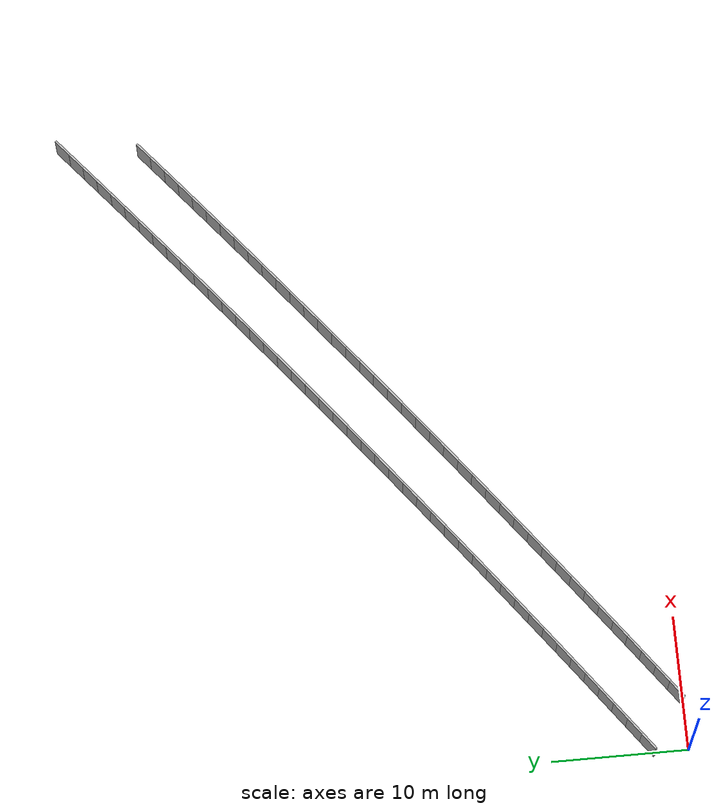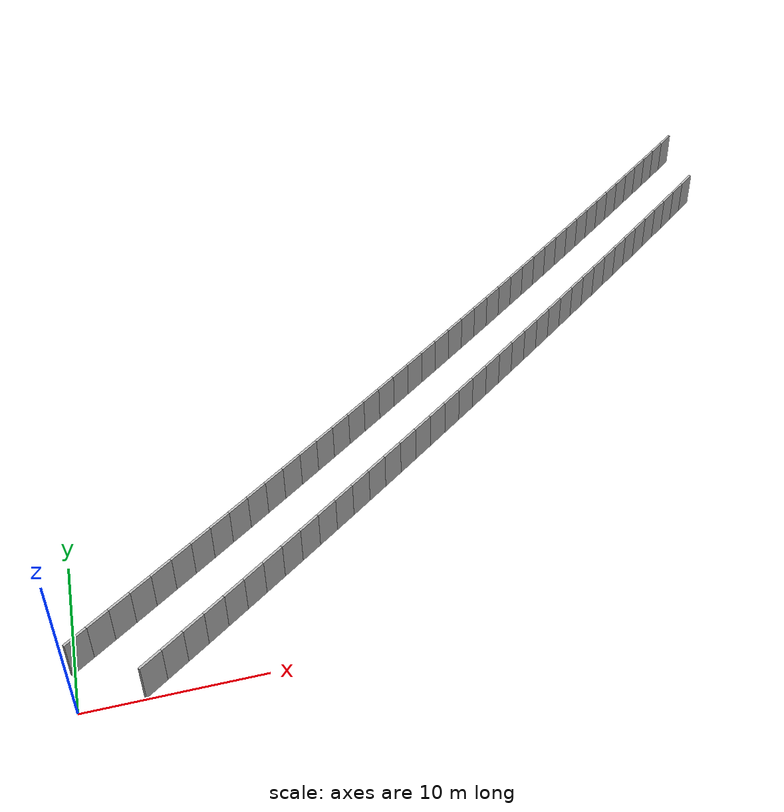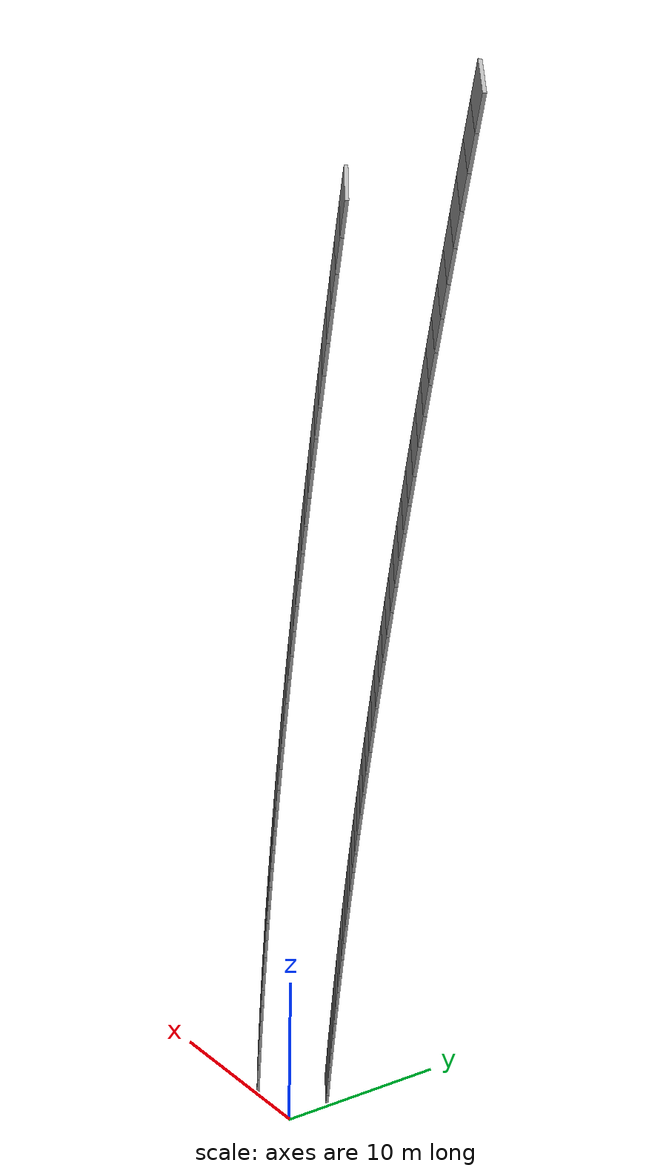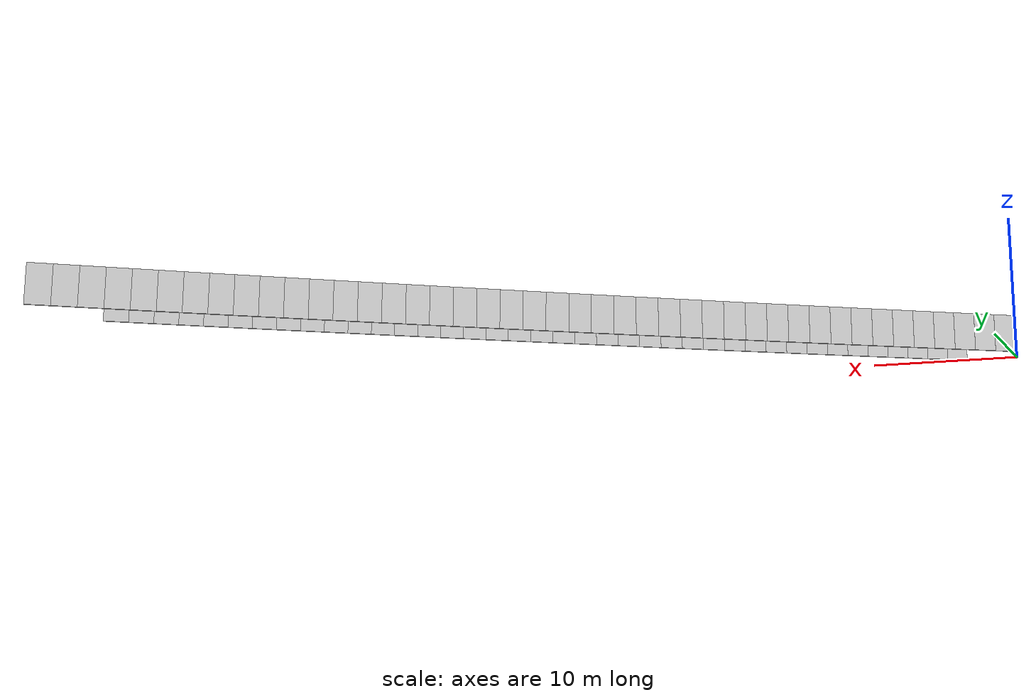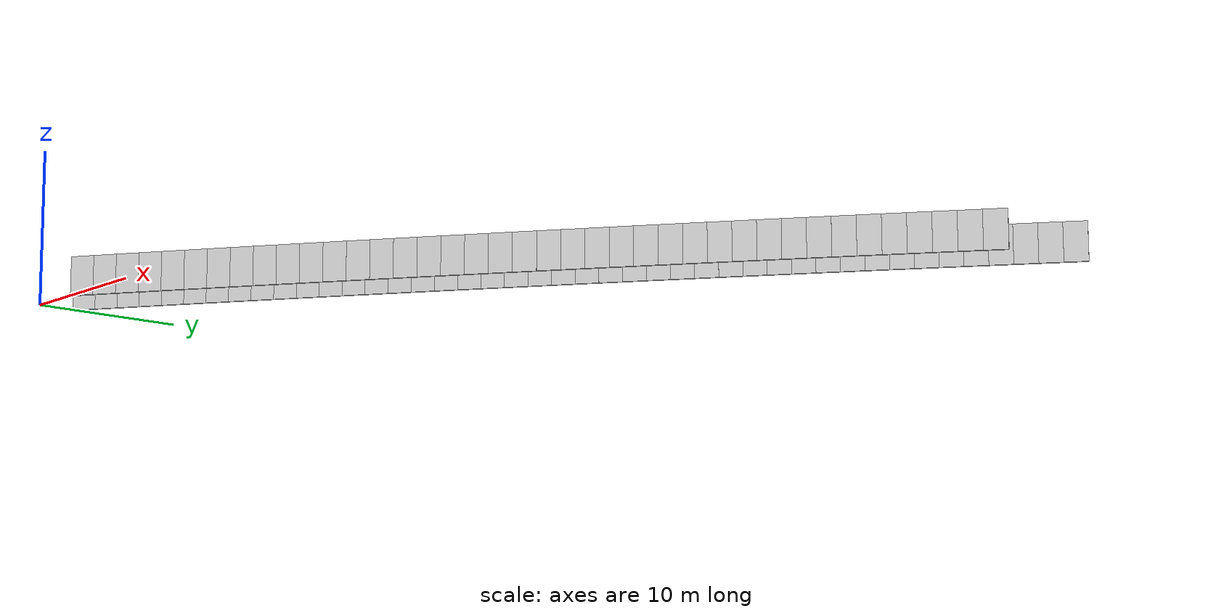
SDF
<?xml version="1.0" ?>
<sdf version="1.6">
  <model name="sps_3707">
    <pose frame="">0 0 0 0 -0 0</pose>
    <static>1</static>
    <self_collide>0</self_collide>
    <allow_auto_disable>0</allow_auto_disable>
    <link name="Wall4065">
      <kinematic>0</kinematic>
      <gravity>1</gravity>
      <self_collide>0</self_collide>
      <collision name="collision">
        <geometry>
          <box>
            <size>1.49635 0.15 2.5</size>
          </box>
        </geometry>
        <pose frame="">0 0 0 0 -0 0</pose>
      </collision>
      <visual name="visual">
        <geometry>
          <box>
            <size>1.49635 0.15 2.5</size>
          </box>
        </geometry>
        <pose frame="">0 0 0 0 -0 0</pose>
        <cast_shadows>1</cast_shadows>
        <transparency>0.0</transparency>
      </visual>
      <pose frame="">0.377952 2.98592 1.25 0 -0 0.634674</pose>
    </link>
    <link name="Wall4066">
      <kinematic>0</kinematic>
      <gravity>1</gravity>
      <self_collide>0</self_collide>
      <collision name="collision">
        <geometry>
          <box>
            <size>1.49643 0.15 2.5</size>
          </box>
        </geometry>
        <pose frame="">0 0 0 0 -0 0</pose>
      </collision>
      <visual name="visual">
        <geometry>
          <box>
            <size>1.49643 0.15 2.5</size>
          </box>
        </geometry>
        <pose frame="">0 0 0 0 -0 0</pose>
        <cast_shadows>1</cast_shadows>
        <transparency>0.0</transparency>
      </visual>
      <pose frame="">1.58224 3.8741 1.25 0 -0 0.636257</pose>
    </link>
    <link name="Wall4067">
      <kinematic>0</kinematic>
      <gravity>1</gravity>
      <self_collide>0</self_collide>
      <collision name="collision">
        <geometry>
          <box>
            <size>1.49668 0.15 2.5</size>
          </box>
        </geometry>
        <pose frame="">0 0 0 0 -0 0</pose>
      </collision>
      <visual name="visual">
        <geometry>
          <box>
            <size>1.49668 0.15 2.5</size>
          </box>
        </geometry>
        <pose frame="">0 0 0 0 -0 0</pose>
        <cast_shadows>1</cast_shadows>
        <transparency>0.0</transparency>
      </visual>
      <pose frame="">2.78524 4.7643 1.25 0 -0 0.637857</pose>
    </link>
    <link name="Wall4068">
      <kinematic>0</kinematic>
      <gravity>1</gravity>
      <self_collide>0</self_collide>
      <collision name="collision">
        <geometry>
          <box>
            <size>1.49646 0.15 2.5</size>
          </box>
        </geometry>
        <pose frame="">0 0 0 0 -0 0</pose>
      </collision>
      <visual name="visual">
        <geometry>
          <box>
            <size>1.49646 0.15 2.5</size>
          </box>
        </geometry>
        <pose frame="">0 0 0 0 -0 0</pose>
        <cast_shadows>1</cast_shadows>
        <transparency>0.0</transparency>
      </visual>
      <pose frame="">3.98684 5.65642 1.25 0 -0 0.639439</pose>
    </link>
    <link name="Wall4069">
      <kinematic>0</kinematic>
      <gravity>1</gravity>
      <self_collide>0</self_collide>
      <collision name="collision">
        <geometry>
          <box>
            <size>1.49665 0.15 2.5</size>
          </box>
        </geometry>
        <pose frame="">0 0 0 0 -0 0</pose>
      </collision>
      <visual name="visual">
        <geometry>
          <box>
            <size>1.49665 0.15 2.5</size>
          </box>
        </geometry>
        <pose frame="">0 0 0 0 -0 0</pose>
        <cast_shadows>1</cast_shadows>
        <transparency>0.0</transparency>
      </visual>
      <pose frame="">5.18703 6.5504 1.25 0 -0 0.640973</pose>
    </link>
    <link name="Wall4070">
      <kinematic>0</kinematic>
      <gravity>1</gravity>
      <self_collide>0</self_collide>
      <collision name="collision">
        <geometry>
          <box>
            <size>1.49667 0.15 2.5</size>
          </box>
        </geometry>
        <pose frame="">0 0 0 0 -0 0</pose>
      </collision>
      <visual name="visual">
        <geometry>
          <box>
            <size>1.49667 0.15 2.5</size>
          </box>
        </geometry>
        <pose frame="">0 0 0 0 -0 0</pose>
        <cast_shadows>1</cast_shadows>
        <transparency>0.0</transparency>
      </visual>
      <pose frame="">6.38595 7.44627 1.25 0 -0 0.64249</pose>
    </link>
    <link name="Wall4071">
      <kinematic>0</kinematic>
      <gravity>1</gravity>
      <self_collide>0</self_collide>
      <collision name="collision">
        <geometry>
          <box>
            <size>1.49656 0.15 2.5</size>
          </box>
        </geometry>
        <pose frame="">0 0 0 0 -0 0</pose>
      </collision>
      <visual name="visual">
        <geometry>
          <box>
            <size>1.49656 0.15 2.5</size>
          </box>
        </geometry>
        <pose frame="">0 0 0 0 -0 0</pose>
        <cast_shadows>1</cast_shadows>
        <transparency>0.0</transparency>
      </visual>
      <pose frame="">7.58337 8.34407 1.25 0 -0 0.644227</pose>
    </link>
    <link name="Wall4072">
      <kinematic>0</kinematic>
      <gravity>1</gravity>
      <self_collide>0</self_collide>
      <collision name="collision">
        <geometry>
          <box>
            <size>1.4965 0.15 2.5</size>
          </box>
        </geometry>
        <pose frame="">0 0 0 0 -0 0</pose>
      </collision>
      <visual name="visual">
        <geometry>
          <box>
            <size>1.4965 0.15 2.5</size>
          </box>
        </geometry>
        <pose frame="">0 0 0 0 -0 0</pose>
        <cast_shadows>1</cast_shadows>
        <transparency>0.0</transparency>
      </visual>
      <pose frame="">8.77917 9.24388 1.25 0 -0 0.64594</pose>
    </link>
    <link name="Wall4073">
      <kinematic>0</kinematic>
      <gravity>1</gravity>
      <self_collide>0</self_collide>
      <collision name="collision">
        <geometry>
          <box>
            <size>1.49648 0.15 2.5</size>
          </box>
        </geometry>
        <pose frame="">0 0 0 0 -0 0</pose>
      </collision>
      <visual name="visual">
        <geometry>
          <box>
            <size>1.49648 0.15 2.5</size>
          </box>
        </geometry>
        <pose frame="">0 0 0 0 -0 0</pose>
        <cast_shadows>1</cast_shadows>
        <transparency>0.0</transparency>
      </visual>
      <pose frame="">9.97356 10.1455 1.25 0 -0 0.647278</pose>
    </link>
    <link name="Wall4074">
      <kinematic>0</kinematic>
      <gravity>1</gravity>
      <self_collide>0</self_collide>
      <collision name="collision">
        <geometry>
          <box>
            <size>1.49658 0.15 2.5</size>
          </box>
        </geometry>
        <pose frame="">0 0 0 0 -0 0</pose>
      </collision>
      <visual name="visual">
        <geometry>
          <box>
            <size>1.49658 0.15 2.5</size>
          </box>
        </geometry>
        <pose frame="">0 0 0 0 -0 0</pose>
        <cast_shadows>1</cast_shadows>
        <transparency>0.0</transparency>
      </visual>
      <pose frame="">11.1666 11.0489 1.25 0 -0 0.648917</pose>
    </link>
    <link name="Wall4075">
      <kinematic>0</kinematic>
      <gravity>1</gravity>
      <self_collide>0</self_collide>
      <collision name="collision">
        <geometry>
          <box>
            <size>1.49639 0.15 2.5</size>
          </box>
        </geometry>
        <pose frame="">0 0 0 0 -0 0</pose>
      </collision>
      <visual name="visual">
        <geometry>
          <box>
            <size>1.49639 0.15 2.5</size>
          </box>
        </geometry>
        <pose frame="">0 0 0 0 -0 0</pose>
        <cast_shadows>1</cast_shadows>
        <transparency>0.0</transparency>
      </visual>
      <pose frame="">12.3582 11.9542 1.25 0 -0 0.6505</pose>
    </link>
    <link name="Wall4076">
      <kinematic>0</kinematic>
      <gravity>1</gravity>
      <self_collide>0</self_collide>
      <collision name="collision">
        <geometry>
          <box>
            <size>1.49669 0.15 2.5</size>
          </box>
        </geometry>
        <pose frame="">0 0 0 0 -0 0</pose>
      </collision>
      <visual name="visual">
        <geometry>
          <box>
            <size>1.49669 0.15 2.5</size>
          </box>
        </geometry>
        <pose frame="">0 0 0 0 -0 0</pose>
        <cast_shadows>1</cast_shadows>
        <transparency>0.0</transparency>
      </visual>
      <pose frame="">13.5485 12.8614 1.25 0 -0 0.652041</pose>
    </link>
    <link name="Wall4077">
      <kinematic>0</kinematic>
      <gravity>1</gravity>
      <self_collide>0</self_collide>
      <collision name="collision">
        <geometry>
          <box>
            <size>1.49645 0.15 2.5</size>
          </box>
        </geometry>
        <pose frame="">0 0 0 0 -0 0</pose>
      </collision>
      <visual name="visual">
        <geometry>
          <box>
            <size>1.49645 0.15 2.5</size>
          </box>
        </geometry>
        <pose frame="">0 0 0 0 -0 0</pose>
        <cast_shadows>1</cast_shadows>
        <transparency>0.0</transparency>
      </visual>
      <pose frame="">14.7373 13.7705 1.25 0 -0 0.653649</pose>
    </link>
    <link name="Wall4078">
      <kinematic>0</kinematic>
      <gravity>1</gravity>
      <self_collide>0</self_collide>
      <collision name="collision">
        <geometry>
          <box>
            <size>1.49642 0.15 2.5</size>
          </box>
        </geometry>
        <pose frame="">0 0 0 0 -0 0</pose>
      </collision>
      <visual name="visual">
        <geometry>
          <box>
            <size>1.49642 0.15 2.5</size>
          </box>
        </geometry>
        <pose frame="">0 0 0 0 -0 0</pose>
        <cast_shadows>1</cast_shadows>
        <transparency>0.0</transparency>
      </visual>
      <pose frame="">15.9245 14.6815 1.25 0 -0 0.655362</pose>
    </link>
    <link name="Wall4079">
      <kinematic>0</kinematic>
      <gravity>1</gravity>
      <self_collide>0</self_collide>
      <collision name="collision">
        <geometry>
          <box>
            <size>1.49657 0.15 2.5</size>
          </box>
        </geometry>
        <pose frame="">0 0 0 0 -0 0</pose>
      </collision>
      <visual name="visual">
        <geometry>
          <box>
            <size>1.49657 0.15 2.5</size>
          </box>
        </geometry>
        <pose frame="">0 0 0 0 -0 0</pose>
        <cast_shadows>1</cast_shadows>
        <transparency>0.0</transparency>
      </visual>
      <pose frame="">17.1103 15.5944 1.25 0 -0 0.65683</pose>
    </link>
    <link name="Wall4080">
      <kinematic>0</kinematic>
      <gravity>1</gravity>
      <self_collide>0</self_collide>
      <collision name="collision">
        <geometry>
          <box>
            <size>1.49654 0.15 2.5</size>
          </box>
        </geometry>
        <pose frame="">0 0 0 0 -0 0</pose>
      </collision>
      <visual name="visual">
        <geometry>
          <box>
            <size>1.49654 0.15 2.5</size>
          </box>
        </geometry>
        <pose frame="">0 0 0 0 -0 0</pose>
        <cast_shadows>1</cast_shadows>
        <transparency>0.0</transparency>
      </visual>
      <pose frame="">18.2946 16.5092 1.25 0 -0 0.658543</pose>
    </link>
    <link name="Wall4081">
      <kinematic>0</kinematic>
      <gravity>1</gravity>
      <self_collide>0</self_collide>
      <collision name="collision">
        <geometry>
          <box>
            <size>1.49671 0.15 2.5</size>
          </box>
        </geometry>
        <pose frame="">0 0 0 0 -0 0</pose>
      </collision>
      <visual name="visual">
        <geometry>
          <box>
            <size>1.49671 0.15 2.5</size>
          </box>
        </geometry>
        <pose frame="">0 0 0 0 -0 0</pose>
        <cast_shadows>1</cast_shadows>
        <transparency>0.0</transparency>
      </visual>
      <pose frame="">19.4777 17.4259 1.25 0 -0 0.659952</pose>
    </link>
    <link name="Wall4082">
      <kinematic>0</kinematic>
      <gravity>1</gravity>
      <self_collide>0</self_collide>
      <collision name="collision">
        <geometry>
          <box>
            <size>1.4965 0.15 2.5</size>
          </box>
        </geometry>
        <pose frame="">0 0 0 0 -0 0</pose>
      </collision>
      <visual name="visual">
        <geometry>
          <box>
            <size>1.4965 0.15 2.5</size>
          </box>
        </geometry>
        <pose frame="">0 0 0 0 -0 0</pose>
        <cast_shadows>1</cast_shadows>
        <transparency>0.0</transparency>
      </visual>
      <pose frame="">20.6593 18.3444 1.25 0 -0 0.661562</pose>
    </link>
    <link name="Wall4083">
      <kinematic>0</kinematic>
      <gravity>1</gravity>
      <self_collide>0</self_collide>
      <collision name="collision">
        <geometry>
          <box>
            <size>1.49663 0.15 2.5</size>
          </box>
        </geometry>
        <pose frame="">0 0 0 0 -0 0</pose>
      </collision>
      <visual name="visual">
        <geometry>
          <box>
            <size>1.49663 0.15 2.5</size>
          </box>
        </geometry>
        <pose frame="">0 0 0 0 -0 0</pose>
        <cast_shadows>1</cast_shadows>
        <transparency>0.0</transparency>
      </visual>
      <pose frame="">21.8393 19.2648 1.25 0 -0 0.6632</pose>
    </link>
    <link name="Wall4084">
      <kinematic>0</kinematic>
      <gravity>1</gravity>
      <self_collide>0</self_collide>
      <collision name="collision">
        <geometry>
          <box>
            <size>1.49639 0.15 2.5</size>
          </box>
        </geometry>
        <pose frame="">0 0 0 0 -0 0</pose>
      </collision>
      <visual name="visual">
        <geometry>
          <box>
            <size>1.49639 0.15 2.5</size>
          </box>
        </geometry>
        <pose frame="">0 0 0 0 -0 0</pose>
        <cast_shadows>1</cast_shadows>
        <transparency>0.0</transparency>
      </visual>
      <pose frame="">23.0179 20.187 1.25 0 -0 0.664721</pose>
    </link>
    <link name="Wall4085">
      <kinematic>0</kinematic>
      <gravity>1</gravity>
      <self_collide>0</self_collide>
      <collision name="collision">
        <geometry>
          <box>
            <size>1.49661 0.15 2.5</size>
          </box>
        </geometry>
        <pose frame="">0 0 0 0 -0 0</pose>
      </collision>
      <visual name="visual">
        <geometry>
          <box>
            <size>1.49661 0.15 2.5</size>
          </box>
        </geometry>
        <pose frame="">0 0 0 0 -0 0</pose>
        <cast_shadows>1</cast_shadows>
        <transparency>0.0</transparency>
      </visual>
      <pose frame="">24.195 21.1111 1.25 0 -0 0.666423</pose>
    </link>
    <link name="Wall4086">
      <kinematic>0</kinematic>
      <gravity>1</gravity>
      <self_collide>0</self_collide>
      <collision name="collision">
        <geometry>
          <box>
            <size>1.49638 0.15 2.5</size>
          </box>
        </geometry>
        <pose frame="">0 0 0 0 -0 0</pose>
      </collision>
      <visual name="visual">
        <geometry>
          <box>
            <size>1.49638 0.15 2.5</size>
          </box>
        </geometry>
        <pose frame="">0 0 0 0 -0 0</pose>
        <cast_shadows>1</cast_shadows>
        <transparency>0.0</transparency>
      </visual>
      <pose frame="">25.3706 22.0371 1.25 0 -0 0.667944</pose>
    </link>
    <link name="Wall4087">
      <kinematic>0</kinematic>
      <gravity>1</gravity>
      <self_collide>0</self_collide>
      <collision name="collision">
        <geometry>
          <box>
            <size>1.49649 0.15 2.5</size>
          </box>
        </geometry>
        <pose frame="">0 0 0 0 -0 0</pose>
      </collision>
      <visual name="visual">
        <geometry>
          <box>
            <size>1.49649 0.15 2.5</size>
          </box>
        </geometry>
        <pose frame="">0 0 0 0 -0 0</pose>
        <cast_shadows>1</cast_shadows>
        <transparency>0.0</transparency>
      </visual>
      <pose frame="">26.5447 22.9649 1.25 0 -0 0.66955</pose>
    </link>
    <link name="Wall4088">
      <kinematic>0</kinematic>
      <gravity>1</gravity>
      <self_collide>0</self_collide>
      <collision name="collision">
        <geometry>
          <box>
            <size>1.49653 0.15 2.5</size>
          </box>
        </geometry>
        <pose frame="">0 0 0 0 -0 0</pose>
      </collision>
      <visual name="visual">
        <geometry>
          <box>
            <size>1.49653 0.15 2.5</size>
          </box>
        </geometry>
        <pose frame="">0 0 0 0 -0 0</pose>
        <cast_shadows>1</cast_shadows>
        <transparency>0.0</transparency>
      </visual>
      <pose frame="">27.7174 23.8946 1.25 0 -0 0.671091</pose>
    </link>
    <link name="Wall4089">
      <kinematic>0</kinematic>
      <gravity>1</gravity>
      <self_collide>0</self_collide>
      <collision name="collision">
        <geometry>
          <box>
            <size>1.49673 0.15 2.5</size>
          </box>
        </geometry>
        <pose frame="">0 0 0 0 -0 0</pose>
      </collision>
      <visual name="visual">
        <geometry>
          <box>
            <size>1.49673 0.15 2.5</size>
          </box>
        </geometry>
        <pose frame="">0 0 0 0 -0 0</pose>
        <cast_shadows>1</cast_shadows>
        <transparency>0.0</transparency>
      </visual>
      <pose frame="">28.8888 24.8262 1.25 0 -0 0.672703</pose>
    </link>
    <link name="Wall4090">
      <kinematic>0</kinematic>
      <gravity>1</gravity>
      <self_collide>0</self_collide>
      <collision name="collision">
        <geometry>
          <box>
            <size>1.49639 0.15 2.5</size>
          </box>
        </geometry>
        <pose frame="">0 0 0 0 -0 0</pose>
      </collision>
      <visual name="visual">
        <geometry>
          <box>
            <size>1.49639 0.15 2.5</size>
          </box>
        </geometry>
        <pose frame="">0 0 0 0 -0 0</pose>
        <cast_shadows>1</cast_shadows>
        <transparency>0.0</transparency>
      </visual>
      <pose frame="">30.0586 25.7596 1.25 0 -0 0.674244</pose>
    </link>
    <link name="Wall4091">
      <kinematic>0</kinematic>
      <gravity>1</gravity>
      <self_collide>0</self_collide>
      <collision name="collision">
        <geometry>
          <box>
            <size>1.4966 0.15 2.5</size>
          </box>
        </geometry>
        <pose frame="">0 0 0 0 -0 0</pose>
      </collision>
      <visual name="visual">
        <geometry>
          <box>
            <size>1.4966 0.15 2.5</size>
          </box>
        </geometry>
        <pose frame="">0 0 0 0 -0 0</pose>
        <cast_shadows>1</cast_shadows>
        <transparency>0.0</transparency>
      </visual>
      <pose frame="">31.2268 26.6948 1.25 0 -0 0.675856</pose>
    </link>
    <link name="Wall4092">
      <kinematic>0</kinematic>
      <gravity>1</gravity>
      <self_collide>0</self_collide>
      <collision name="collision">
        <geometry>
          <box>
            <size>1.49661 0.15 2.5</size>
          </box>
        </geometry>
        <pose frame="">0 0 0 0 -0 0</pose>
      </collision>
      <visual name="visual">
        <geometry>
          <box>
            <size>1.49661 0.15 2.5</size>
          </box>
        </geometry>
        <pose frame="">0 0 0 0 -0 0</pose>
        <cast_shadows>1</cast_shadows>
        <transparency>0.0</transparency>
      </visual>
      <pose frame="">32.3937 27.6319 1.25 0 -0 0.677365</pose>
    </link>
    <link name="Wall4093">
      <kinematic>0</kinematic>
      <gravity>1</gravity>
      <self_collide>0</self_collide>
      <collision name="collision">
        <geometry>
          <box>
            <size>1.4965 0.15 2.5</size>
          </box>
        </geometry>
        <pose frame="">0 0 0 0 -0 0</pose>
      </collision>
      <visual name="visual">
        <geometry>
          <box>
            <size>1.4965 0.15 2.5</size>
          </box>
        </geometry>
        <pose frame="">0 0 0 0 -0 0</pose>
        <cast_shadows>1</cast_shadows>
        <transparency>0.0</transparency>
      </visual>
      <pose frame="">33.559 28.5709 1.25 0 -0 0.679155</pose>
    </link>
    <link name="Wall4094">
      <kinematic>0</kinematic>
      <gravity>1</gravity>
      <self_collide>0</self_collide>
      <collision name="collision">
        <geometry>
          <box>
            <size>1.49652 0.15 2.5</size>
          </box>
        </geometry>
        <pose frame="">0 0 0 0 -0 0</pose>
      </collision>
      <visual name="visual">
        <geometry>
          <box>
            <size>1.49652 0.15 2.5</size>
          </box>
        </geometry>
        <pose frame="">0 0 0 0 -0 0</pose>
        <cast_shadows>1</cast_shadows>
        <transparency>0.0</transparency>
      </visual>
      <pose frame="">34.7228 29.5118 1.25 0 -0 0.680665</pose>
    </link>
    <link name="Wall4095">
      <kinematic>0</kinematic>
      <gravity>1</gravity>
      <self_collide>0</self_collide>
      <collision name="collision">
        <geometry>
          <box>
            <size>1.49653 0.15 2.5</size>
          </box>
        </geometry>
        <pose frame="">0 0 0 0 -0 0</pose>
      </collision>
      <visual name="visual">
        <geometry>
          <box>
            <size>1.49653 0.15 2.5</size>
          </box>
        </geometry>
        <pose frame="">0 0 0 0 -0 0</pose>
        <cast_shadows>1</cast_shadows>
        <transparency>0.0</transparency>
      </visual>
      <pose frame="">35.8851 30.4545 1.25 0 -0 0.682231</pose>
    </link>
    <link name="Wall4096">
      <kinematic>0</kinematic>
      <gravity>1</gravity>
      <self_collide>0</self_collide>
      <collision name="collision">
        <geometry>
          <box>
            <size>1.49649 0.15 2.5</size>
          </box>
        </geometry>
        <pose frame="">0 0 0 0 -0 0</pose>
      </collision>
      <visual name="visual">
        <geometry>
          <box>
            <size>1.49649 0.15 2.5</size>
          </box>
        </geometry>
        <pose frame="">0 0 0 0 -0 0</pose>
        <cast_shadows>1</cast_shadows>
        <transparency>0.0</transparency>
      </visual>
      <pose frame="">37.046 31.3989 1.25 0 -0 0.68362</pose>
    </link>
    <link name="Wall4097">
      <kinematic>0</kinematic>
      <gravity>1</gravity>
      <self_collide>0</self_collide>
      <collision name="collision">
        <geometry>
          <box>
            <size>1.49649 0.15 2.5</size>
          </box>
        </geometry>
        <pose frame="">0 0 0 0 -0 0</pose>
      </collision>
      <visual name="visual">
        <geometry>
          <box>
            <size>1.49649 0.15 2.5</size>
          </box>
        </geometry>
        <pose frame="">0 0 0 0 -0 0</pose>
        <cast_shadows>1</cast_shadows>
        <transparency>0.0</transparency>
      </visual>
      <pose frame="">38.2053 32.3451 1.25 0 -0 0.685359</pose>
    </link>
    <link name="Wall4098">
      <kinematic>0</kinematic>
      <gravity>1</gravity>
      <self_collide>0</self_collide>
      <collision name="collision">
        <geometry>
          <box>
            <size>1.49673 0.15 2.5</size>
          </box>
        </geometry>
        <pose frame="">0 0 0 0 -0 0</pose>
      </collision>
      <visual name="visual">
        <geometry>
          <box>
            <size>1.49673 0.15 2.5</size>
          </box>
        </geometry>
        <pose frame="">0 0 0 0 -0 0</pose>
        <cast_shadows>1</cast_shadows>
        <transparency>0.0</transparency>
      </visual>
      <pose frame="">39.3632 33.2933 1.25 0 -0 0.686969</pose>
    </link>
    <link name="Wall4099">
      <kinematic>0</kinematic>
      <gravity>1</gravity>
      <self_collide>0</self_collide>
      <collision name="collision">
        <geometry>
          <box>
            <size>1.49632 0.15 2.5</size>
          </box>
        </geometry>
        <pose frame="">0 0 0 0 -0 0</pose>
      </collision>
      <visual name="visual">
        <geometry>
          <box>
            <size>1.49632 0.15 2.5</size>
          </box>
        </geometry>
        <pose frame="">0 0 0 0 -0 0</pose>
        <cast_shadows>1</cast_shadows>
        <transparency>0.0</transparency>
      </visual>
      <pose frame="">40.5196 34.2433 1.25 0 -0 0.688565</pose>
    </link>
    <link name="Wall4100">
      <kinematic>0</kinematic>
      <gravity>1</gravity>
      <self_collide>0</self_collide>
      <collision name="collision">
        <geometry>
          <box>
            <size>1.49636 0.15 2.5</size>
          </box>
        </geometry>
        <pose frame="">0 0 0 0 -0 0</pose>
      </collision>
      <visual name="visual">
        <geometry>
          <box>
            <size>1.49636 0.15 2.5</size>
          </box>
        </geometry>
        <pose frame="">0 0 0 0 -0 0</pose>
        <cast_shadows>1</cast_shadows>
        <transparency>0.0</transparency>
      </visual>
      <pose frame="">41.6742 35.195 1.25 0 -0 0.690075</pose>
    </link>
    <link name="Wall4101">
      <kinematic>0</kinematic>
      <gravity>1</gravity>
      <self_collide>0</self_collide>
      <collision name="collision">
        <geometry>
          <box>
            <size>1.49656 0.15 2.5</size>
          </box>
        </geometry>
        <pose frame="">0 0 0 0 -0 0</pose>
      </collision>
      <visual name="visual">
        <geometry>
          <box>
            <size>1.49656 0.15 2.5</size>
          </box>
        </geometry>
        <pose frame="">0 0 0 0 -0 0</pose>
        <cast_shadows>1</cast_shadows>
        <transparency>0.0</transparency>
      </visual>
      <pose frame="">42.8275 36.1486 1.25 0 -0 0.69171</pose>
    </link>
    <link name="Wall4102">
      <kinematic>0</kinematic>
      <gravity>1</gravity>
      <self_collide>0</self_collide>
      <collision name="collision">
        <geometry>
          <box>
            <size>1.49682 0.15 2.5</size>
          </box>
        </geometry>
        <pose frame="">0 0 0 0 -0 0</pose>
      </collision>
      <visual name="visual">
        <geometry>
          <box>
            <size>1.49682 0.15 2.5</size>
          </box>
        </geometry>
        <pose frame="">0 0 0 0 -0 0</pose>
        <cast_shadows>1</cast_shadows>
        <transparency>0.0</transparency>
      </visual>
      <pose frame="">43.9795 37.1042 1.25 0 -0 0.693318</pose>
    </link>
    <link name="Wall4103">
      <kinematic>0</kinematic>
      <gravity>1</gravity>
      <self_collide>0</self_collide>
      <collision name="collision">
        <geometry>
          <box>
            <size>1.49656 0.15 2.5</size>
          </box>
        </geometry>
        <pose frame="">0 0 0 0 -0 0</pose>
      </collision>
      <visual name="visual">
        <geometry>
          <box>
            <size>1.49656 0.15 2.5</size>
          </box>
        </geometry>
        <pose frame="">0 0 0 0 -0 0</pose>
        <cast_shadows>1</cast_shadows>
        <transparency>0.0</transparency>
      </visual>
      <pose frame="">45.1299 38.0616 1.25 0 -0 0.694837</pose>
    </link>
    <link name="Wall4104">
      <kinematic>0</kinematic>
      <gravity>1</gravity>
      <self_collide>0</self_collide>
      <collision name="collision">
        <geometry>
          <box>
            <size>1.49652 0.15 2.5</size>
          </box>
        </geometry>
        <pose frame="">0 0 0 0 -0 0</pose>
      </collision>
      <visual name="visual">
        <geometry>
          <box>
            <size>1.49652 0.15 2.5</size>
          </box>
        </geometry>
        <pose frame="">0 0 0 0 -0 0</pose>
        <cast_shadows>1</cast_shadows>
        <transparency>0.0</transparency>
      </visual>
      <pose frame="">46.2787 39.0207 1.25 0 -0 0.696456</pose>
    </link>
    <link name="Wall4105">
      <kinematic>0</kinematic>
      <gravity>1</gravity>
      <self_collide>0</self_collide>
      <collision name="collision">
        <geometry>
          <box>
            <size>1.49639 0.15 2.5</size>
          </box>
        </geometry>
        <pose frame="">0 0 0 0 -0 0</pose>
      </collision>
      <visual name="visual">
        <geometry>
          <box>
            <size>1.49639 0.15 2.5</size>
          </box>
        </geometry>
        <pose frame="">0 0 0 0 -0 0</pose>
        <cast_shadows>1</cast_shadows>
        <transparency>0.0</transparency>
      </visual>
      <pose frame="">47.4259 39.9816 1.25 0 -0 0.69807</pose>
    </link>
    <link name="Wall4106">
      <kinematic>0</kinematic>
      <gravity>1</gravity>
      <self_collide>0</self_collide>
      <collision name="collision">
        <geometry>
          <box>
            <size>1.49666 0.15 2.5</size>
          </box>
        </geometry>
        <pose frame="">0 0 0 0 -0 0</pose>
      </collision>
      <visual name="visual">
        <geometry>
          <box>
            <size>1.49666 0.15 2.5</size>
          </box>
        </geometry>
        <pose frame="">0 0 0 0 -0 0</pose>
        <cast_shadows>1</cast_shadows>
        <transparency>0.0</transparency>
      </visual>
      <pose frame="">48.5716 40.9444 1.25 0 -0 0.699678</pose>
    </link>
    <link name="Wall4107">
      <kinematic>0</kinematic>
      <gravity>1</gravity>
      <self_collide>0</self_collide>
      <collision name="collision">
        <geometry>
          <box>
            <size>1.49642 0.15 2.5</size>
          </box>
        </geometry>
        <pose frame="">0 0 0 0 -0 0</pose>
      </collision>
      <visual name="visual">
        <geometry>
          <box>
            <size>1.49642 0.15 2.5</size>
          </box>
        </geometry>
        <pose frame="">0 0 0 0 -0 0</pose>
        <cast_shadows>1</cast_shadows>
        <transparency>0.0</transparency>
      </visual>
      <pose frame="">49.7158 41.909 1.25 0 -0 0.701198</pose>
    </link>
    <link name="Wall7841">
      <kinematic>0</kinematic>
      <gravity>1</gravity>
      <self_collide>0</self_collide>
      <collision name="collision">
        <geometry>
          <box>
            <size>1.50288 0.15 2.5</size>
          </box>
        </geometry>
        <pose frame="">0 0 0 0 -0 0</pose>
      </collision>
      <visual name="visual">
        <geometry>
          <box>
            <size>1.50288 0.15 2.5</size>
          </box>
        </geometry>
        <pose frame="">0 0 0 0 -0 0</pose>
        <cast_shadows>1</cast_shadows>
        <transparency>0.0</transparency>
      </visual>
      <pose frame="">4.04363 0.544783 1.25 0 -0 0.636264</pose>
    </link>
    <link name="Wall7842">
      <kinematic>0</kinematic>
      <gravity>1</gravity>
      <self_collide>0</self_collide>
      <collision name="collision">
        <geometry>
          <box>
            <size>1.50341 0.15 2.5</size>
          </box>
        </geometry>
        <pose frame="">0 0 0 0 -0 0</pose>
      </collision>
      <visual name="visual">
        <geometry>
          <box>
            <size>1.50341 0.15 2.5</size>
          </box>
        </geometry>
        <pose frame="">0 0 0 0 -0 0</pose>
        <cast_shadows>1</cast_shadows>
        <transparency>0.0</transparency>
      </visual>
      <pose frame="">5.25194 1.43889 1.25 0 -0 0.637825</pose>
    </link>
    <link name="Wall7843">
      <kinematic>0</kinematic>
      <gravity>1</gravity>
      <self_collide>0</self_collide>
      <collision name="collision">
        <geometry>
          <box>
            <size>1.50303 0.15 2.5</size>
          </box>
        </geometry>
        <pose frame="">0 0 0 0 -0 0</pose>
      </collision>
      <visual name="visual">
        <geometry>
          <box>
            <size>1.50303 0.15 2.5</size>
          </box>
        </geometry>
        <pose frame="">0 0 0 0 -0 0</pose>
        <cast_shadows>1</cast_shadows>
        <transparency>0.0</transparency>
      </visual>
      <pose frame="">6.45895 2.33488 1.25 0 -0 0.639327</pose>
    </link>
    <link name="Wall7844">
      <kinematic>0</kinematic>
      <gravity>1</gravity>
      <self_collide>0</self_collide>
      <collision name="collision">
        <geometry>
          <box>
            <size>1.50312 0.15 2.5</size>
          </box>
        </geometry>
        <pose frame="">0 0 0 0 -0 0</pose>
      </collision>
      <visual name="visual">
        <geometry>
          <box>
            <size>1.50312 0.15 2.5</size>
          </box>
        </geometry>
        <pose frame="">0 0 0 0 -0 0</pose>
        <cast_shadows>1</cast_shadows>
        <transparency>0.0</transparency>
      </visual>
      <pose frame="">7.66436 3.23277 1.25 0 -0 0.641105</pose>
    </link>
    <link name="Wall7845">
      <kinematic>0</kinematic>
      <gravity>1</gravity>
      <self_collide>0</self_collide>
      <collision name="collision">
        <geometry>
          <box>
            <size>1.50319 0.15 2.5</size>
          </box>
        </geometry>
        <pose frame="">0 0 0 0 -0 0</pose>
      </collision>
      <visual name="visual">
        <geometry>
          <box>
            <size>1.50319 0.15 2.5</size>
          </box>
        </geometry>
        <pose frame="">0 0 0 0 -0 0</pose>
        <cast_shadows>1</cast_shadows>
        <transparency>0.0</transparency>
      </visual>
      <pose frame="">8.86837 4.13267 1.25 0 -0 0.642592</pose>
    </link>
    <link name="Wall7846">
      <kinematic>0</kinematic>
      <gravity>1</gravity>
      <self_collide>0</self_collide>
      <collision name="collision">
        <geometry>
          <box>
            <size>1.50298 0.15 2.5</size>
          </box>
        </geometry>
        <pose frame="">0 0 0 0 -0 0</pose>
      </collision>
      <visual name="visual">
        <geometry>
          <box>
            <size>1.50298 0.15 2.5</size>
          </box>
        </geometry>
        <pose frame="">0 0 0 0 -0 0</pose>
        <cast_shadows>1</cast_shadows>
        <transparency>0.0</transparency>
      </visual>
      <pose frame="">10.0709 5.03438 1.25 0 -0 0.644167</pose>
    </link>
    <link name="Wall7847">
      <kinematic>0</kinematic>
      <gravity>1</gravity>
      <self_collide>0</self_collide>
      <collision name="collision">
        <geometry>
          <box>
            <size>1.50292 0.15 2.5</size>
          </box>
        </geometry>
        <pose frame="">0 0 0 0 -0 0</pose>
      </collision>
      <visual name="visual">
        <geometry>
          <box>
            <size>1.50292 0.15 2.5</size>
          </box>
        </geometry>
        <pose frame="">0 0 0 0 -0 0</pose>
        <cast_shadows>1</cast_shadows>
        <transparency>0.0</transparency>
      </visual>
      <pose frame="">11.2719 5.93797 1.25 0 -0 0.645873</pose>
    </link>
    <link name="Wall7848">
      <kinematic>0</kinematic>
      <gravity>1</gravity>
      <self_collide>0</self_collide>
      <collision name="collision">
        <geometry>
          <box>
            <size>1.5031 0.15 2.5</size>
          </box>
        </geometry>
        <pose frame="">0 0 0 0 -0 0</pose>
      </collision>
      <visual name="visual">
        <geometry>
          <box>
            <size>1.5031 0.15 2.5</size>
          </box>
        </geometry>
        <pose frame="">0 0 0 0 -0 0</pose>
        <cast_shadows>1</cast_shadows>
        <transparency>0.0</transparency>
      </visual>
      <pose frame="">12.4715 6.84349 1.25 0 -0 0.64731</pose>
    </link>
    <link name="Wall7849">
      <kinematic>0</kinematic>
      <gravity>1</gravity>
      <self_collide>0</self_collide>
      <collision name="collision">
        <geometry>
          <box>
            <size>1.50311 0.15 2.5</size>
          </box>
        </geometry>
        <pose frame="">0 0 0 0 -0 0</pose>
      </collision>
      <visual name="visual">
        <geometry>
          <box>
            <size>1.50311 0.15 2.5</size>
          </box>
        </geometry>
        <pose frame="">0 0 0 0 -0 0</pose>
        <cast_shadows>1</cast_shadows>
        <transparency>0.0</transparency>
      </visual>
      <pose frame="">13.6699 7.7509 1.25 0 -0 0.648934</pose>
    </link>
    <link name="Wall7850">
      <kinematic>0</kinematic>
      <gravity>1</gravity>
      <self_collide>0</self_collide>
      <collision name="collision">
        <geometry>
          <box>
            <size>1.503 0.15 2.5</size>
          </box>
        </geometry>
        <pose frame="">0 0 0 0 -0 0</pose>
      </collision>
      <visual name="visual">
        <geometry>
          <box>
            <size>1.503 0.15 2.5</size>
          </box>
        </geometry>
        <pose frame="">0 0 0 0 -0 0</pose>
        <cast_shadows>1</cast_shadows>
        <transparency>0.0</transparency>
      </visual>
      <pose frame="">14.8667 8.6602 1.25 0 -0 0.650518</pose>
    </link>
    <link name="Wall7851">
      <kinematic>0</kinematic>
      <gravity>1</gravity>
      <self_collide>0</self_collide>
      <collision name="collision">
        <geometry>
          <box>
            <size>1.50317 0.15 2.5</size>
          </box>
        </geometry>
        <pose frame="">0 0 0 0 -0 0</pose>
      </collision>
      <visual name="visual">
        <geometry>
          <box>
            <size>1.50317 0.15 2.5</size>
          </box>
        </geometry>
        <pose frame="">0 0 0 0 -0 0</pose>
        <cast_shadows>1</cast_shadows>
        <transparency>0.0</transparency>
      </visual>
      <pose frame="">16.0621 9.57139 1.25 0 -0 0.652069</pose>
    </link>
    <link name="Wall7852">
      <kinematic>0</kinematic>
      <gravity>1</gravity>
      <self_collide>0</self_collide>
      <collision name="collision">
        <geometry>
          <box>
            <size>1.50307 0.15 2.5</size>
          </box>
        </geometry>
        <pose frame="">0 0 0 0 -0 0</pose>
      </collision>
      <visual name="visual">
        <geometry>
          <box>
            <size>1.50307 0.15 2.5</size>
          </box>
        </geometry>
        <pose frame="">0 0 0 0 -0 0</pose>
        <cast_shadows>1</cast_shadows>
        <transparency>0.0</transparency>
      </visual>
      <pose frame="">17.2561 10.4845 1.25 0 -0 0.653653</pose>
    </link>
    <link name="Wall7853">
      <kinematic>0</kinematic>
      <gravity>1</gravity>
      <self_collide>0</self_collide>
      <collision name="collision">
        <geometry>
          <box>
            <size>1.50313 0.15 2.5</size>
          </box>
        </geometry>
        <pose frame="">0 0 0 0 -0 0</pose>
      </collision>
      <visual name="visual">
        <geometry>
          <box>
            <size>1.50313 0.15 2.5</size>
          </box>
        </geometry>
        <pose frame="">0 0 0 0 -0 0</pose>
        <cast_shadows>1</cast_shadows>
        <transparency>0.0</transparency>
      </visual>
      <pose frame="">18.4486 11.3995 1.25 0 -0 0.655309</pose>
    </link>
    <link name="Wall7854">
      <kinematic>0</kinematic>
      <gravity>1</gravity>
      <self_collide>0</self_collide>
      <collision name="collision">
        <geometry>
          <box>
            <size>1.50295 0.15 2.5</size>
          </box>
        </geometry>
        <pose frame="">0 0 0 0 -0 0</pose>
      </collision>
      <visual name="visual">
        <geometry>
          <box>
            <size>1.50295 0.15 2.5</size>
          </box>
        </geometry>
        <pose frame="">0 0 0 0 -0 0</pose>
        <cast_shadows>1</cast_shadows>
        <transparency>0.0</transparency>
      </visual>
      <pose frame="">19.6395 12.3164 1.25 0 -0 0.656887</pose>
    </link>
    <link name="Wall7855">
      <kinematic>0</kinematic>
      <gravity>1</gravity>
      <self_collide>0</self_collide>
      <collision name="collision">
        <geometry>
          <box>
            <size>1.50327 0.15 2.5</size>
          </box>
        </geometry>
        <pose frame="">0 0 0 0 -0 0</pose>
      </collision>
      <visual name="visual">
        <geometry>
          <box>
            <size>1.50327 0.15 2.5</size>
          </box>
        </geometry>
        <pose frame="">0 0 0 0 -0 0</pose>
        <cast_shadows>1</cast_shadows>
        <transparency>0.0</transparency>
      </visual>
      <pose frame="">20.8292 13.2352 1.25 0 -0 0.658419</pose>
    </link>
    <link name="Wall7856">
      <kinematic>0</kinematic>
      <gravity>1</gravity>
      <self_collide>0</self_collide>
      <collision name="collision">
        <geometry>
          <box>
            <size>1.50309 0.15 2.5</size>
          </box>
        </geometry>
        <pose frame="">0 0 0 0 -0 0</pose>
      </collision>
      <visual name="visual">
        <geometry>
          <box>
            <size>1.50309 0.15 2.5</size>
          </box>
        </geometry>
        <pose frame="">0 0 0 0 -0 0</pose>
        <cast_shadows>1</cast_shadows>
        <transparency>0.0</transparency>
      </visual>
      <pose frame="">22.0174 14.1559 1.25 0 -0 0.660053</pose>
    </link>
    <link name="Wall7857">
      <kinematic>0</kinematic>
      <gravity>1</gravity>
      <self_collide>0</self_collide>
      <collision name="collision">
        <geometry>
          <box>
            <size>1.50311 0.15 2.5</size>
          </box>
        </geometry>
        <pose frame="">0 0 0 0 -0 0</pose>
      </collision>
      <visual name="visual">
        <geometry>
          <box>
            <size>1.50311 0.15 2.5</size>
          </box>
        </geometry>
        <pose frame="">0 0 0 0 -0 0</pose>
        <cast_shadows>1</cast_shadows>
        <transparency>0.0</transparency>
      </visual>
      <pose frame="">23.2041 15.0784 1.25 0 -0 0.661531</pose>
    </link>
    <link name="Wall7858">
      <kinematic>0</kinematic>
      <gravity>1</gravity>
      <self_collide>0</self_collide>
      <collision name="collision">
        <geometry>
          <box>
            <size>1.50301 0.15 2.5</size>
          </box>
        </geometry>
        <pose frame="">0 0 0 0 -0 0</pose>
      </collision>
      <visual name="visual">
        <geometry>
          <box>
            <size>1.50301 0.15 2.5</size>
          </box>
        </geometry>
        <pose frame="">0 0 0 0 -0 0</pose>
        <cast_shadows>1</cast_shadows>
        <transparency>0.0</transparency>
      </visual>
      <pose frame="">24.3893 16.0028 1.25 0 -0 0.66323</pose>
    </link>
    <link name="Wall7859">
      <kinematic>0</kinematic>
      <gravity>1</gravity>
      <self_collide>0</self_collide>
      <collision name="collision">
        <geometry>
          <box>
            <size>1.50308 0.15 2.5</size>
          </box>
        </geometry>
        <pose frame="">0 0 0 0 -0 0</pose>
      </collision>
      <visual name="visual">
        <geometry>
          <box>
            <size>1.50308 0.15 2.5</size>
          </box>
        </geometry>
        <pose frame="">0 0 0 0 -0 0</pose>
        <cast_shadows>1</cast_shadows>
        <transparency>0.0</transparency>
      </visual>
      <pose frame="">25.573 16.9291 1.25 0 -0 0.664797</pose>
    </link>
    <link name="Wall7860">
      <kinematic>0</kinematic>
      <gravity>1</gravity>
      <self_collide>0</self_collide>
      <collision name="collision">
        <geometry>
          <box>
            <size>1.50303 0.15 2.5</size>
          </box>
        </geometry>
        <pose frame="">0 0 0 0 -0 0</pose>
      </collision>
      <visual name="visual">
        <geometry>
          <box>
            <size>1.50303 0.15 2.5</size>
          </box>
        </geometry>
        <pose frame="">0 0 0 0 -0 0</pose>
        <cast_shadows>1</cast_shadows>
        <transparency>0.0</transparency>
      </visual>
      <pose frame="">26.7552 17.8572 1.25 0 -0 0.666268</pose>
    </link>
    <link name="Wall7861">
      <kinematic>0</kinematic>
      <gravity>1</gravity>
      <self_collide>0</self_collide>
      <collision name="collision">
        <geometry>
          <box>
            <size>1.50337 0.15 2.5</size>
          </box>
        </geometry>
        <pose frame="">0 0 0 0 -0 0</pose>
      </collision>
      <visual name="visual">
        <geometry>
          <box>
            <size>1.50337 0.15 2.5</size>
          </box>
        </geometry>
        <pose frame="">0 0 0 0 -0 0</pose>
        <cast_shadows>1</cast_shadows>
        <transparency>0.0</transparency>
      </visual>
      <pose frame="">27.9361 18.7873 1.25 0 -0 0.668001</pose>
    </link>
    <link name="Wall7862">
      <kinematic>0</kinematic>
      <gravity>1</gravity>
      <self_collide>0</self_collide>
      <collision name="collision">
        <geometry>
          <box>
            <size>1.5028 0.15 2.5</size>
          </box>
        </geometry>
        <pose frame="">0 0 0 0 -0 0</pose>
      </collision>
      <visual name="visual">
        <geometry>
          <box>
            <size>1.5028 0.15 2.5</size>
          </box>
        </geometry>
        <pose frame="">0 0 0 0 -0 0</pose>
        <cast_shadows>1</cast_shadows>
        <transparency>0.0</transparency>
      </visual>
      <pose frame="">29.1155 19.7192 1.25 0 -0 0.669489</pose>
    </link>
    <link name="Wall7863">
      <kinematic>0</kinematic>
      <gravity>1</gravity>
      <self_collide>0</self_collide>
      <collision name="collision">
        <geometry>
          <box>
            <size>1.50321 0.15 2.5</size>
          </box>
        </geometry>
        <pose frame="">0 0 0 0 -0 0</pose>
      </collision>
      <visual name="visual">
        <geometry>
          <box>
            <size>1.50321 0.15 2.5</size>
          </box>
        </geometry>
        <pose frame="">0 0 0 0 -0 0</pose>
        <cast_shadows>1</cast_shadows>
        <transparency>0.0</transparency>
      </visual>
      <pose frame="">30.2933 20.6529 1.25 0 -0 0.671139</pose>
    </link>
    <link name="Wall7864">
      <kinematic>0</kinematic>
      <gravity>1</gravity>
      <self_collide>0</self_collide>
      <collision name="collision">
        <geometry>
          <box>
            <size>1.50307 0.15 2.5</size>
          </box>
        </geometry>
        <pose frame="">0 0 0 0 -0 0</pose>
      </collision>
      <visual name="visual">
        <geometry>
          <box>
            <size>1.50307 0.15 2.5</size>
          </box>
        </geometry>
        <pose frame="">0 0 0 0 -0 0</pose>
        <cast_shadows>1</cast_shadows>
        <transparency>0.0</transparency>
      </visual>
      <pose frame="">31.4697 21.5886 1.25 0 -0 0.672718</pose>
    </link>
    <link name="Wall7865">
      <kinematic>0</kinematic>
      <gravity>1</gravity>
      <self_collide>0</self_collide>
      <collision name="collision">
        <geometry>
          <box>
            <size>1.50312 0.15 2.5</size>
          </box>
        </geometry>
        <pose frame="">0 0 0 0 -0 0</pose>
      </collision>
      <visual name="visual">
        <geometry>
          <box>
            <size>1.50312 0.15 2.5</size>
          </box>
        </geometry>
        <pose frame="">0 0 0 0 -0 0</pose>
        <cast_shadows>1</cast_shadows>
        <transparency>0.0</transparency>
      </visual>
      <pose frame="">32.6446 22.5261 1.25 0 -0 0.674253</pose>
    </link>
    <link name="Wall7866">
      <kinematic>0</kinematic>
      <gravity>1</gravity>
      <self_collide>0</self_collide>
      <collision name="collision">
        <geometry>
          <box>
            <size>1.50324 0.15 2.5</size>
          </box>
        </geometry>
        <pose frame="">0 0 0 0 -0 0</pose>
      </collision>
      <visual name="visual">
        <geometry>
          <box>
            <size>1.50324 0.15 2.5</size>
          </box>
        </geometry>
        <pose frame="">0 0 0 0 -0 0</pose>
        <cast_shadows>1</cast_shadows>
        <transparency>0.0</transparency>
      </visual>
      <pose frame="">33.818 23.4655 1.25 0 -0 0.675851</pose>
    </link>
    <link name="Wall7867">
      <kinematic>0</kinematic>
      <gravity>1</gravity>
      <self_collide>0</self_collide>
      <collision name="collision">
        <geometry>
          <box>
            <size>1.50303 0.15 2.5</size>
          </box>
        </geometry>
        <pose frame="">0 0 0 0 -0 0</pose>
      </collision>
      <visual name="visual">
        <geometry>
          <box>
            <size>1.50303 0.15 2.5</size>
          </box>
        </geometry>
        <pose frame="">0 0 0 0 -0 0</pose>
        <cast_shadows>1</cast_shadows>
        <transparency>0.0</transparency>
      </visual>
      <pose frame="">34.99 24.4067 1.25 0 -0 0.677366</pose>
    </link>
    <link name="Wall7868">
      <kinematic>0</kinematic>
      <gravity>1</gravity>
      <self_collide>0</self_collide>
      <collision name="collision">
        <geometry>
          <box>
            <size>1.50302 0.15 2.5</size>
          </box>
        </geometry>
        <pose frame="">0 0 0 0 -0 0</pose>
      </collision>
      <visual name="visual">
        <geometry>
          <box>
            <size>1.50302 0.15 2.5</size>
          </box>
        </geometry>
        <pose frame="">0 0 0 0 -0 0</pose>
        <cast_shadows>1</cast_shadows>
        <transparency>0.0</transparency>
      </visual>
      <pose frame="">36.1605 25.3497 1.25 0 -0 0.679041</pose>
    </link>
    <link name="Wall7869">
      <kinematic>0</kinematic>
      <gravity>1</gravity>
      <self_collide>0</self_collide>
      <collision name="collision">
        <geometry>
          <box>
            <size>1.50308 0.15 2.5</size>
          </box>
        </geometry>
        <pose frame="">0 0 0 0 -0 0</pose>
      </collision>
      <visual name="visual">
        <geometry>
          <box>
            <size>1.50308 0.15 2.5</size>
          </box>
        </geometry>
        <pose frame="">0 0 0 0 -0 0</pose>
        <cast_shadows>1</cast_shadows>
        <transparency>0.0</transparency>
      </visual>
      <pose frame="">37.3294 26.2946 1.25 0 -0 0.680575</pose>
    </link>
    <link name="Wall7870">
      <kinematic>0</kinematic>
      <gravity>1</gravity>
      <self_collide>0</self_collide>
      <collision name="collision">
        <geometry>
          <box>
            <size>1.50307 0.15 2.5</size>
          </box>
        </geometry>
        <pose frame="">0 0 0 0 -0 0</pose>
      </collision>
      <visual name="visual">
        <geometry>
          <box>
            <size>1.50307 0.15 2.5</size>
          </box>
        </geometry>
        <pose frame="">0 0 0 0 -0 0</pose>
        <cast_shadows>1</cast_shadows>
        <transparency>0.0</transparency>
      </visual>
      <pose frame="">38.4968 27.2414 1.25 0 -0 0.682307</pose>
    </link>
    <link name="Wall7871">
      <kinematic>0</kinematic>
      <gravity>1</gravity>
      <self_collide>0</self_collide>
      <collision name="collision">
        <geometry>
          <box>
            <size>1.50315 0.15 2.5</size>
          </box>
        </geometry>
        <pose frame="">0 0 0 0 -0 0</pose>
      </collision>
      <visual name="visual">
        <geometry>
          <box>
            <size>1.50315 0.15 2.5</size>
          </box>
        </geometry>
        <pose frame="">0 0 0 0 -0 0</pose>
        <cast_shadows>1</cast_shadows>
        <transparency>0.0</transparency>
      </visual>
      <pose frame="">39.6627 28.1901 1.25 0 -0 0.683784</pose>
    </link>
    <link name="Wall7872">
      <kinematic>0</kinematic>
      <gravity>1</gravity>
      <self_collide>0</self_collide>
      <collision name="collision">
        <geometry>
          <box>
            <size>1.50303 0.15 2.5</size>
          </box>
        </geometry>
        <pose frame="">0 0 0 0 -0 0</pose>
      </collision>
      <visual name="visual">
        <geometry>
          <box>
            <size>1.50303 0.15 2.5</size>
          </box>
        </geometry>
        <pose frame="">0 0 0 0 -0 0</pose>
        <cast_shadows>1</cast_shadows>
        <transparency>0.0</transparency>
      </visual>
      <pose frame="">40.827 29.1406 1.25 0 -0 0.685421</pose>
    </link>
    <link name="Wall7873">
      <kinematic>0</kinematic>
      <gravity>1</gravity>
      <self_collide>0</self_collide>
      <collision name="collision">
        <geometry>
          <box>
            <size>1.50311 0.15 2.5</size>
          </box>
        </geometry>
        <pose frame="">0 0 0 0 -0 0</pose>
      </collision>
      <visual name="visual">
        <geometry>
          <box>
            <size>1.50311 0.15 2.5</size>
          </box>
        </geometry>
        <pose frame="">0 0 0 0 -0 0</pose>
        <cast_shadows>1</cast_shadows>
        <transparency>0.0</transparency>
      </visual>
      <pose frame="">41.99 30.0929 1.25 0 -0 0.686898</pose>
    </link>
    <link name="Wall7874">
      <kinematic>0</kinematic>
      <gravity>1</gravity>
      <self_collide>0</self_collide>
      <collision name="collision">
        <geometry>
          <box>
            <size>1.50314 0.15 2.5</size>
          </box>
        </geometry>
        <pose frame="">0 0 0 0 -0 0</pose>
      </collision>
      <visual name="visual">
        <geometry>
          <box>
            <size>1.50314 0.15 2.5</size>
          </box>
        </geometry>
        <pose frame="">0 0 0 0 -0 0</pose>
        <cast_shadows>1</cast_shadows>
        <transparency>0.0</transparency>
      </visual>
      <pose frame="">43.1515 31.047 1.25 0 -0 0.688458</pose>
    </link>
    <link name="Wall7875">
      <kinematic>0</kinematic>
      <gravity>1</gravity>
      <self_collide>0</self_collide>
      <collision name="collision">
        <geometry>
          <box>
            <size>1.5029 0.15 2.5</size>
          </box>
        </geometry>
        <pose frame="">0 0 0 0 -0 0</pose>
      </collision>
      <visual name="visual">
        <geometry>
          <box>
            <size>1.5029 0.15 2.5</size>
          </box>
        </geometry>
        <pose frame="">0 0 0 0 -0 0</pose>
        <cast_shadows>1</cast_shadows>
        <transparency>0.0</transparency>
      </visual>
      <pose frame="">44.3113 32.0029 1.25 0 -0 0.690116</pose>
    </link>
    <link name="Wall7876">
      <kinematic>0</kinematic>
      <gravity>1</gravity>
      <self_collide>0</self_collide>
      <collision name="collision">
        <geometry>
          <box>
            <size>1.50315 0.15 2.5</size>
          </box>
        </geometry>
        <pose frame="">0 0 0 0 -0 0</pose>
      </collision>
      <visual name="visual">
        <geometry>
          <box>
            <size>1.50315 0.15 2.5</size>
          </box>
        </geometry>
        <pose frame="">0 0 0 0 -0 0</pose>
        <cast_shadows>1</cast_shadows>
        <transparency>0.0</transparency>
      </visual>
      <pose frame="">45.4697 32.9607 1.25 0 -0 0.691718</pose>
    </link>
    <link name="Wall7877">
      <kinematic>0</kinematic>
      <gravity>1</gravity>
      <self_collide>0</self_collide>
      <collision name="collision">
        <geometry>
          <box>
            <size>1.503 0.15 2.5</size>
          </box>
        </geometry>
        <pose frame="">0 0 0 0 -0 0</pose>
      </collision>
      <visual name="visual">
        <geometry>
          <box>
            <size>1.503 0.15 2.5</size>
          </box>
        </geometry>
        <pose frame="">0 0 0 0 -0 0</pose>
        <cast_shadows>1</cast_shadows>
        <transparency>0.0</transparency>
      </visual>
      <pose frame="">46.6265 33.9204 1.25 0 -0 0.693381</pose>
    </link>
    <link name="Wall7878">
      <kinematic>0</kinematic>
      <gravity>1</gravity>
      <self_collide>0</self_collide>
      <collision name="collision">
        <geometry>
          <box>
            <size>1.50322 0.15 2.5</size>
          </box>
        </geometry>
        <pose frame="">0 0 0 0 -0 0</pose>
      </collision>
      <visual name="visual">
        <geometry>
          <box>
            <size>1.50322 0.15 2.5</size>
          </box>
        </geometry>
        <pose frame="">0 0 0 0 -0 0</pose>
        <cast_shadows>1</cast_shadows>
        <transparency>0.0</transparency>
      </visual>
      <pose frame="">47.7817 34.882 1.25 0 -0 0.694951</pose>
    </link>
    <link name="Wall7879">
      <kinematic>0</kinematic>
      <gravity>1</gravity>
      <self_collide>0</self_collide>
      <collision name="collision">
        <geometry>
          <box>
            <size>1.50302 0.15 2.5</size>
          </box>
        </geometry>
        <pose frame="">0 0 0 0 -0 0</pose>
      </collision>
      <visual name="visual">
        <geometry>
          <box>
            <size>1.50302 0.15 2.5</size>
          </box>
        </geometry>
        <pose frame="">0 0 0 0 -0 0</pose>
        <cast_shadows>1</cast_shadows>
        <transparency>0.0</transparency>
      </visual>
      <pose frame="">48.9355 35.8454 1.25 0 -0 0.696438</pose>
    </link>
  </model>
</sdf>
